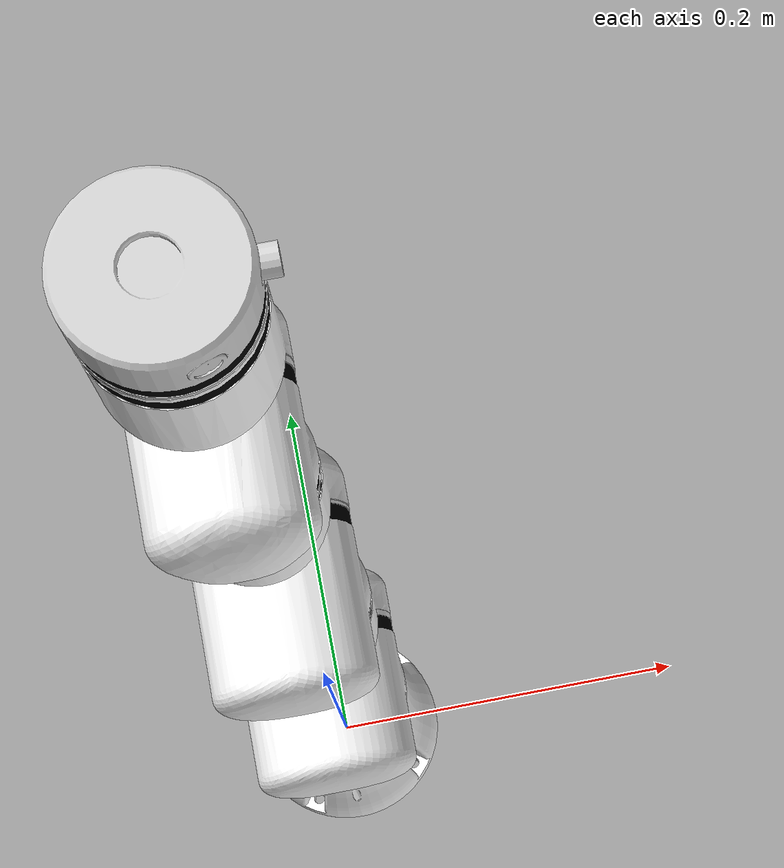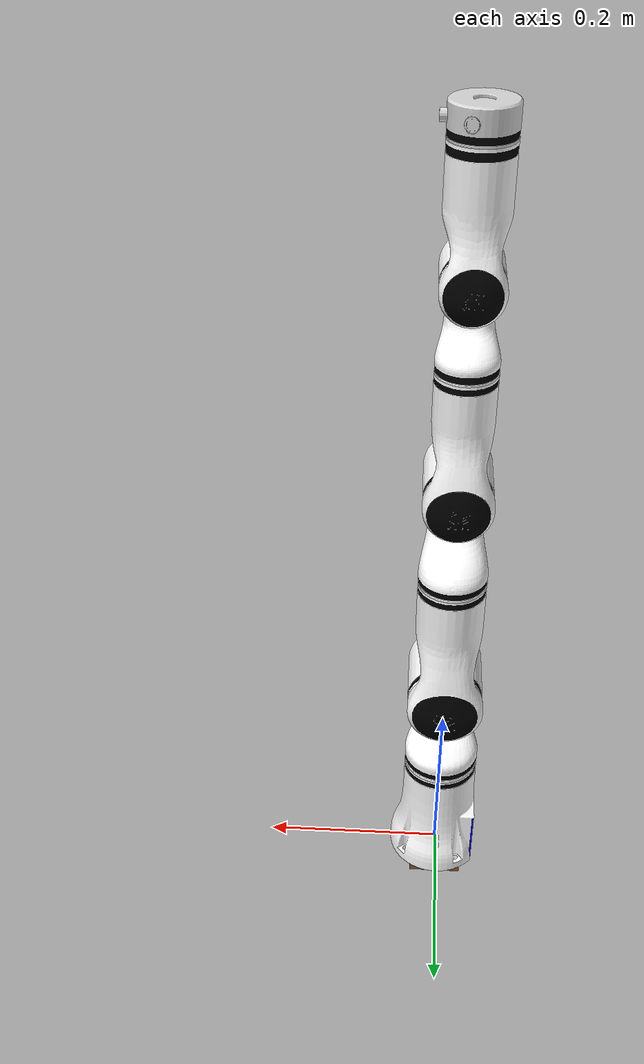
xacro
<?xml version='1.0' encoding='UTF-8'?>
<robot xmlns:xacro="http://www.ros.org/wiki/xacro" name="rm_75">
  <!-- arg link7_type-->
  <xacro:arg name="link7_type" default="Link7"/>
  <!-- arg->property-->
  <xacro:property name="link7_type" value="$(arg link7_type)"/>
  <xacro:include filename="$(find rm_description)/urdf/RM75/rm_75.transmission.xacro"/>
  <xacro:include filename="$(find rm_description)/urdf/RM75/rm_75.gazebo.xacro"/>
  <!-- Inertial matrix-->
  <xacro:macro name="inertial_matrix" params="mass">
    <inertial>
      <mass value="${mass}"/>
      <inertia ixx="1.0" ixy="0.0" ixz="0.0" iyy="0.5" iyz="0.0" izz="1.0"/>
    </inertial>
  </xacro:macro>
  <xacro:macro name="Box_inertial_matrix" params="m l w h">
    <inertial>
      <mass value="${m}"/>
      <inertia ixx="${m*(h*h + l*l)/12}" ixy="0" ixz="0" iyy="${m*(w*w + l*l)/12}" iyz="0" izz="${m*(w*w + h*h)/12}"/>
    </inertial>
  </xacro:macro>
  <link name="dummy">
  </link>
  <joint name="dummy_joint" type="fixed">
    <parent link="dummy"/>
    <child link="base_link"/>
  </joint>
  <!-- ///////////////////////////////////////   bottom_joint   //////////////////////////////////////////-->
  <joint name="bottom_joint" type="fixed">
    <origin xyz="0 0 0" rpy="0 0 0"/>
    <parent link="base_link"/>
    <child link="bottom_link"/>
  </joint>
  <link name="bottom_link">
    <visual>
      <origin xyz=" 0 0 -0.02"  rpy="0 0 0"/>
      <geometry>
        <box size="0.06 0.06 0.02" />
      </geometry>
      <material name="Brown" />
    </visual>
    <collision>
      <origin xyz="0 0 0.01" rpy="0 0 0"/>
      <geometry>
        <box size="0.06 0.06 0.02"/>
      </geometry>
    </collision>
    <xacro:Box_inertial_matrix m="500" l="1" w="1" h="0.02"/>
  </link>
  <link name="base_link">
    <inertial>
      <origin xyz="0.00049987 5.2709E-05 0.060019" rpy="0 0 0"/>
      <mass value="1.862"/>
      <inertia ixx="0.0017232" ixy="-3.1058E-06" ixz="-3.7924E-05" iyy="0.0017051" iyz="1.3691E-06" izz="0.00090158"/>
    </inertial>
    <visual>
      <origin rpy="0 0 0" xyz="0 0 0"/>
      <geometry>
        <mesh filename="package://rm_description/meshes/dae/rm75/base_link.dae"/>
      </geometry>
    </visual>
    <collision>
      <origin xyz="0 0 0" rpy="0 0 0"/>
      <geometry>
        <mesh filename="package://rm_description/meshes/RM75/base_link.STL"/>
      </geometry>
    </collision>
  </link>
  <link name="Link1">
    <inertial>
      <origin rpy="0 0 0" xyz="0.000241 0.00995004875438421 -0.0132729634515197"/>
      <mass value="1.574"/>
      <inertia ixx="0.002487573" ixy="7.90896450576573e-06" ixz="9.66302905131397e-06" iyy="0.00145055531790631" iyz="-0.00017939619746143" izz="0.00232103668209369"/>
    </inertial>
    <visual>
      <origin rpy="1.5708 0 0" xyz="0 0 0"/>
      <geometry>
        <mesh filename="package://rm_description/meshes/dae/rm75/link_1.dae"/>
      </geometry>
    </visual>
    <collision>
      <origin rpy="1.5708 0 0" xyz="0 0 0"/>
      <geometry>
        <mesh filename="package://rm_description/meshes/RM75/link1.STL"/>
      </geometry>
    </collision>
  </link>
  <joint name="joint1" type="revolute">
    <origin rpy="-1.5708 0 0" xyz="0 0 0.2405"/>
    <parent link="base_link"/>
    <child link="Link1"/>
    <axis xyz="0 -0.999999999993254 -3.67320510330504e-06"/>
    <limit lower="-3.106" upper="3.106" effort="60" velocity="3.14"/>
    <dynamics damping="50" friction="1"/>
  </joint>
  <link name="Link2">
    <inertial>
      <origin rpy="0 0 0" xyz="-0.000357 0.00532939225786383 0.10678898042477"/>
      <mass value="1.217"/>
      <inertia ixx="0.003494121" ixy="-5.61301072939424e-06" ixz="-2.92097938228005e-06" iyy="0.00344408428941695" iyz="0.000583874628319345" izz="0.000892716710583047"/>
    </inertial>
    <visual>
      <origin rpy="-1.5708 0 0" xyz="0 0 0"/>
      <geometry>
        <mesh filename="package://rm_description/meshes/dae/rm75/link_2.dae"/>
      </geometry>
    </visual>
    <collision>
      <origin rpy="-1.5708 0 0" xyz="0 0 0"/>
      <geometry>
        <mesh filename="package://rm_description/meshes/RM75/link2.STL"/>
      </geometry>
    </collision>
  </link>
  <joint name="joint2" type="revolute">
    <origin rpy="1.5708 0 0" xyz="0 0 0"/>
    <parent link="Link1"/>
    <child link="Link2"/>
    <axis xyz="0 0.999999999993254 -3.67320510330504e-06"/>
    <limit lower="-2.2689" upper="2.2689" effort="60" velocity="3.14"/>
    <dynamics damping="50" friction="1"/>
  </joint>
  <link name="Link3">
    <inertial>
      <origin rpy="0 0 0" xyz="3e-06 0.0113240513513309 -0.0139799584045311"/>
      <mass value="1.11"/>
      <inertia ixx="0.001836663" ixy="4.21599170220123e-06" ixz="2.25901548621747e-06" iyy="0.00106254527304991" iyz="-3.71686027285797e-05" izz="0.00149887472695008"/>
    </inertial>
    <visual>
      <origin rpy="1.5708 0 0" xyz="0 0 0"/>
      <geometry>
        <mesh filename="package://rm_description/meshes/dae/rm75/link_3.dae"/>
      </geometry>
    </visual>
    <collision>
      <origin rpy="1.5708 0 0" xyz="0 0 0"/>
      <geometry>
        <mesh filename="package://rm_description/meshes/RM75/link3.STL"/>
      </geometry>
    </collision>
  </link>
  <joint name="joint3" type="revolute">
    <origin rpy="-1.5708 0 0" xyz="0 9.40340506446091e-07 0.255999999998273"/>
    <parent link="Link2"/>
    <child link="Link3"/>
    <axis xyz="0 -0.999999999993254 -3.67320510330504e-06"/>
    <limit lower="-3.106" upper="3.106" effort="30" velocity="3.14"/>
    <dynamics damping="50" friction="1"/>
  </joint>
  <link name="Link4">
    <inertial>
      <origin rpy="0 0 0" xyz="-5e-06 0.00474731096616561 0.0846579825627242"/>
      <mass value="0.685"/>
      <inertia ixx="0.001282444" ixy="-6.29997976059737e-07" ixz="5.51002314115497e-07" iyy="0.00125617870497235" iyz="0.000232080755951225" izz="0.000373011295027649"/>
    </inertial>
    <visual>
      <origin rpy="-1.5708 0 0" xyz="0 0 0"/>
      <geometry>
        <mesh filename="package://rm_description/meshes/dae/rm75/link_4.dae"/>
      </geometry>
    </visual>
    <collision>
      <origin rpy="-1.5708 0 0" xyz="0 0 0"/>
      <geometry>
        <mesh filename="package://rm_description/meshes/RM75/link4.STL"/>
      </geometry>
    </collision>
  </link>
  <joint name="joint4" type="revolute">
    <origin rpy="1.5708 0 0" xyz="0 0 0"/>
    <parent link="Link3"/>
    <child link="Link4"/>
    <axis xyz="0 0.999999999993253 -3.67320510330504e-06"/>
    <limit lower="-2.356" upper="2.356" effort="30" velocity="3.14"/>
    <dynamics damping="50" friction="1"/>
  </joint>
  <link name="Link5">
    <inertial>
      <origin rpy="0 0 0" xyz="7.79999999999999e-05 0.00878104752019518 -0.0129369677454987"/>
      <mass value="0.619"/>
      <inertia ixx="0.000627336" ixy="1.34499399062738e-06" ixz="1.63600494044982e-06" iyy="0.000370291256906287" iyz="-3.49706323927397e-05" izz="0.000542454743093712"/>
    </inertial>
    <visual>
      <origin rpy="1.5708 0 0" xyz="0 0 0"/>
      <geometry>
        <mesh filename="package://rm_description/meshes/dae/rm75/link_5.dae"/>
      </geometry>
    </visual>
    <collision>
      <origin rpy="1.5708 0 0" xyz="0 0 0"/>
      <geometry>
        <mesh filename="package://rm_description/meshes/RM75/link5.STL"/>
      </geometry>
    </collision>
  </link>
  <joint name="joint5" type="revolute">
    <origin rpy="-1.5708 0 0" xyz="0 7.71373071694059e-07 0.209999999998583"/>
    <parent link="Link4"/>
    <child link="Link5"/>
    <axis xyz="0 -0.999999999993253 -3.67320510330504e-06"/>
    <limit lower="-3.106" upper="3.106" effort="10" velocity="3.14"/>
    <dynamics damping="50" friction="1"/>
  </joint>
  <link name="Link6">
    <inertial>
      <origin rpy="0 0 0" xyz="-1.4e-05 0.00281928843473851 0.078523989644705"/>
      <mass value="0.602"/>
      <inertia ixx="0.000780774" ixy="-4.68999555539018e-07" ixz="1.21001722732377e-07" iyy="0.000763955885331537" iyz="0.000120511258963647" izz="0.000289972114668462"/>
    </inertial>
    <visual>
      <origin rpy="-1.5708 0 0" xyz="0 0 0"/>
      <geometry>
        <mesh filename="package://rm_description/meshes/dae/rm75/link_6.dae"/>
      </geometry>
    </visual>
    <collision>
      <origin rpy="-1.5708 0 0" xyz="0 0 0"/>
      <geometry>
        <mesh filename="package://rm_description/meshes/RM75/link6.STL"/>
      </geometry>
    </collision>
  </link>
  <joint name="joint6" type="revolute">
    <origin rpy="1.5708 0 0" xyz="0 0 0"/>
    <parent link="Link5"/>
    <child link="Link6"/>
    <axis xyz="0 0.999999999993253 -3.67320510330504e-06"/>
    <limit lower="-2.234" upper="2.234" effort="10" velocity="3.14"/>
    <dynamics damping="50" friction="1"/>
  </joint>
  <xacro:if value="${ link7_type =='Link7' }">
    <link name="Link7">
      <inertial>
        <origin xyz="0.001094 -0.000077 -0.010119" rpy="0 0 0"/>
        <mass value="0.107"/>
        <inertia ixx="0.000044123" ixy="-0.000000064" ixz="0.0000003" iyy="0.000035078" iyz="-0.000000029" izz="0.000065445"/>
      </inertial>
      <visual>
        <origin rpy="0 0 0" xyz="0 0 0"/>
        <geometry>
          <mesh filename="package://rm_description/meshes/dae/rm75/link_7.dae"/>
        </geometry>
      </visual>
      <collision>
        <origin xyz="0 0 0" rpy="0 0 0"/>
        <geometry>
          <mesh filename="package://rm_description/meshes/RM75/link7.STL"/>
        </geometry>
      </collision>
    </link>
    <joint name="joint7" type="revolute">
      <origin rpy="0 0 0" xyz="0 5.28941534875926e-07 0.143999999999028"/>
      <parent link="Link6"/>
      <child link="Link7"/>
      <axis xyz="0 0 1"/>
      <limit lower="-6.28" upper="6.28" effort="10" velocity="3.14"/>
      <dynamics damping="50" friction="1"/>
    </joint>
  </xacro:if>
  <xacro:if value="${ link7_type =='Link7_6fb' }">
    <link name="Link7">
      <inertial>
        <origin xyz="0.001094 -0.000077 -0.010119" rpy="0 0 0"/>
        <mass value="0.144"/>
        <inertia ixx="0.000044123" ixy="-0.000000064" ixz="0.0000003" iyy="0.000035078" iyz="-0.000000029" izz="0.000065445"/>
      </inertial>
      <visual>
      <origin
        xyz="0 0 0"
        rpy="0 0 0" />
      <geometry>
        <mesh
          filename="package://rm_description/meshes/dae/rm75/link_7_fb.dae" />
      </geometry>
    </visual>
      <collision>
        <origin xyz="0 0 0" rpy="0 0 0"/>
        <geometry>
          <mesh filename="package://rm_description/meshes/RM75/Link7_6fb.STL"/>
        </geometry>
      </collision>
    </link>
    <joint name="joint7" type="revolute">
      <origin rpy="0 0 0" xyz="0 5.92120662652773e-07 0.161199999998912"/>
      <parent link="Link6"/>
      <child link="Link7"/>
      <axis xyz="0 0 1"/>
      <limit lower="-6.28" upper="6.28" effort="10" velocity="3.14"/>
    </joint>
  </xacro:if>
  <!-- Transmissions for ROS Control-->
  <xacro:macro name="transmission_block" params="joint_name">
    <transmission name="tran1">
      <type>transmission_interface/SimpleTransmission</type>
      <joint name="${joint_name}">
        <hardwareInterface>hardware_interface/PositionJointInterface</hardwareInterface>
      </joint>
      <actuator name="motor1">
        <hardwareInterface>hardware_interface/PositionJointInterface</hardwareInterface>
        <mechanicalReduction>1</mechanicalReduction>
      </actuator>
    </transmission>
  </xacro:macro>
  <xacro:transmission_block joint_name="joint1"/>
  <xacro:transmission_block joint_name="joint2"/>
  <xacro:transmission_block joint_name="joint3"/>
  <xacro:transmission_block joint_name="joint4"/>
  <xacro:transmission_block joint_name="joint5"/>
  <xacro:transmission_block joint_name="joint6"/>
  <xacro:transmission_block joint_name="joint7"/>
  <!-- ros_control plugin-->
  <gazebo>
    <plugin name="gazebo_ros_control" filename="libgazebo_ros_control.so">
      <robotNamespace>/arm</robotNamespace>
      <robotSimType>gazebo_ros_control/DefaultRobotHWSim</robotSimType>
      <legacyModeNS>true</legacyModeNS>
    </plugin>
  </gazebo>
</robot>
